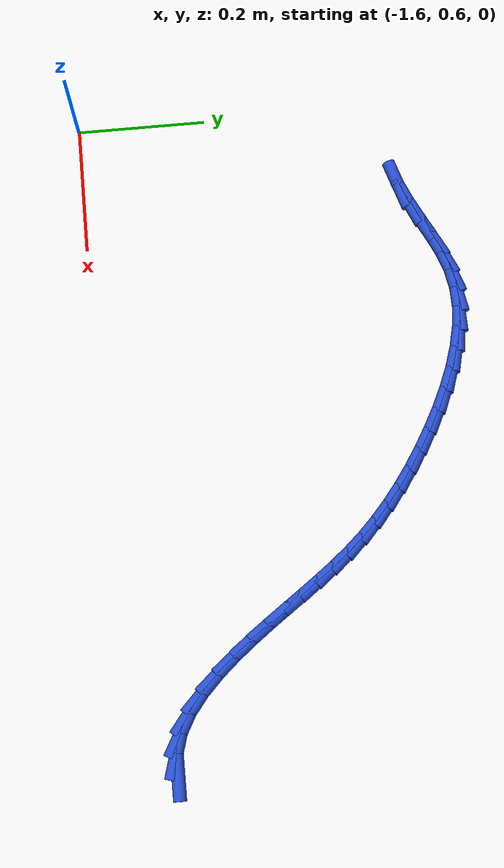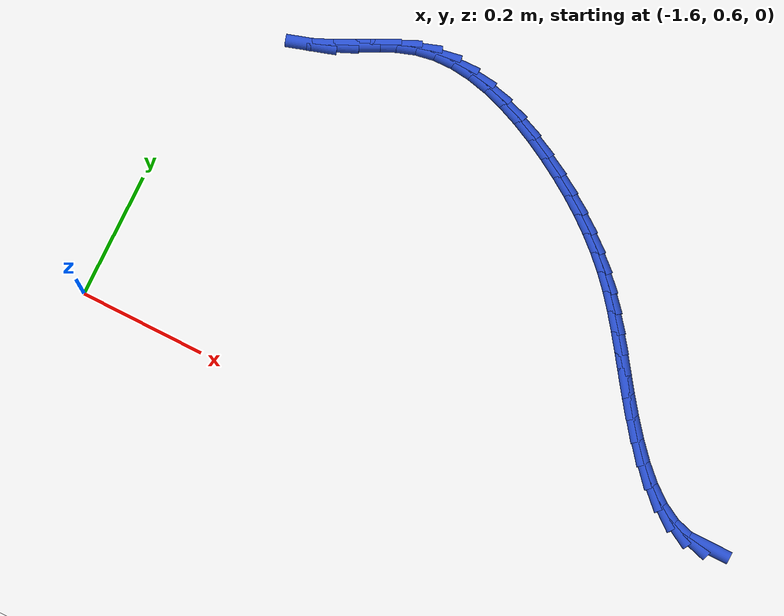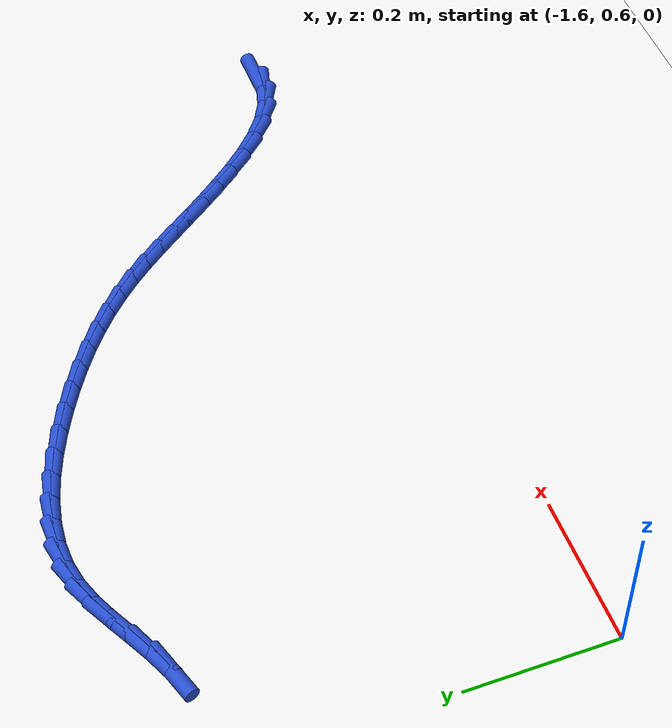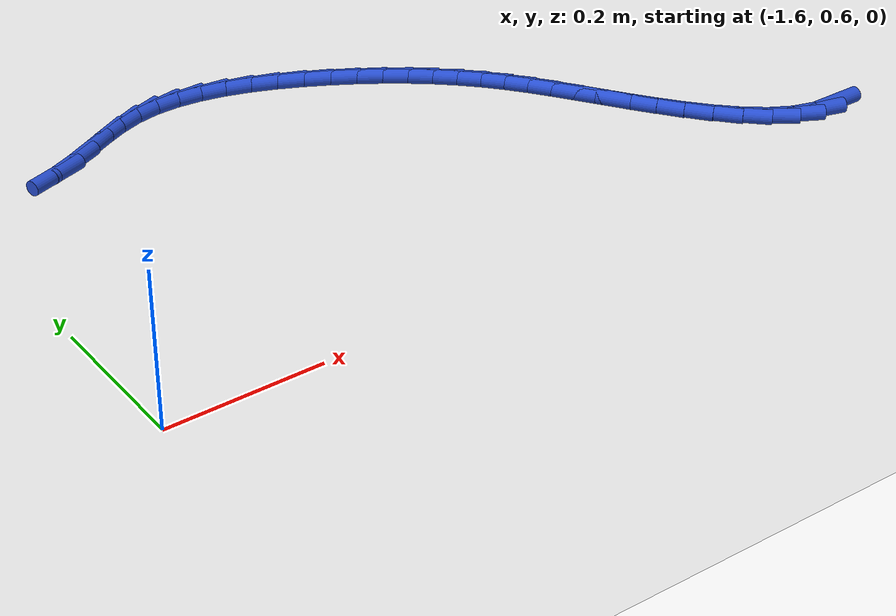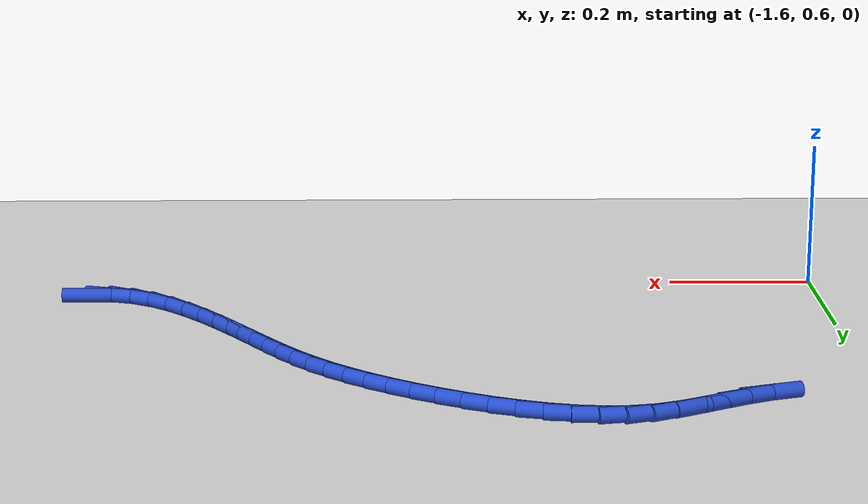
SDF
<sdf version="1.6">
 <world name="default">
  <model name="ground_plane">
   <static>1</static>
   <link name="link">
    <collision name="collision">
     <geometry><plane><normal>0 0 1</normal><size>100 100</size></plane></geometry>
     <surface><friction><ode><mu>100</mu><mu2>50</mu2></ode></friction></surface>
    </collision>
    <visual name="visual">
     <cast_shadows>0</cast_shadows>
     <geometry><plane><normal>0 0 1</normal><size>100 100</size></plane></geometry>
     <material>
      <script><uri>file://media/materials/scripts/gazebo.material</uri><name>Gazebo/WhiteGlow</name></script>
     </material>
    </visual>
   </link>
  </model>
  <model name="line">
   <link name="link_31">
    <pose>-0.5807907295750022 0.6813469273677638 0.01 0 1.57 -0.0019705620650321077</pose>
    <collision name="collision">
     <geometry><cylinder><radius>0.01</radius><length>0.08</length></cylinder></geometry>
    </collision>
    <visual name="visual">
     <material>
      <script><name>Gazebo/Blue</name><uri>file://media/materials/scripts/gazebo.material</uri></script>
     </material>
     <geometry><cylinder><radius>0.01</radius><length>0.08</length></cylinder></geometry>
    </visual>
   </link>
   <link name="link_32">
    <pose>-0.6106427766690227 0.6814057527554728 0.01 0 1.57 -0.2867981203086742</pose>
    <collision name="collision">
     <geometry><cylinder><radius>0.01</radius><length>0.08</length></cylinder></geometry>
    </collision>
    <visual name="visual">
     <material>
      <script><name>Gazebo/Blue</name><uri>file://media/materials/scripts/gazebo.material</uri></script>
     </material>
     <geometry><cylinder><radius>0.01</radius><length>0.08</length></cylinder></geometry>
    </visual>
   </link>
   <link name="link_33">
    <pose>-0.6397890279914353 0.6900018302974791 0.01 0 1.57 -0.5047179763512967</pose>
    <collision name="collision">
     <geometry><cylinder><radius>0.01</radius><length>0.08</length></cylinder></geometry>
    </collision>
    <visual name="visual">
     <material>
      <script><name>Gazebo/Blue</name><uri>file://media/materials/scripts/gazebo.material</uri></script>
     </material>
     <geometry><cylinder><radius>0.01</radius><length>0.08</length></cylinder></geometry>
    </visual>
   </link>
   <link name="link_34">
    <pose>-0.6680489531455344 0.7056138678432118 0.01 0 1.57 -0.6599458796858335</pose>
    <collision name="collision">
     <geometry><cylinder><radius>0.01</radius><length>0.08</length></cylinder></geometry>
    </collision>
    <visual name="visual">
     <material>
      <script><name>Gazebo/Blue</name><uri>file://media/materials/scripts/gazebo.material</uri></script>
     </material>
     <geometry><cylinder><radius>0.01</radius><length>0.08</length></cylinder></geometry>
    </visual>
   </link>
   <link name="link_35">
    <pose>-0.6952420819657715 0.726716230652086 0.01 0 1.57 -0.7681726812389821</pose>
    <collision name="collision">
     <geometry><cylinder><radius>0.01</radius><length>0.08</length></cylinder></geometry>
    </collision>
    <visual name="visual">
     <material>
      <script><name>Gazebo/Blue</name><uri>file://media/materials/scripts/gazebo.material</uri></script>
     </material>
     <geometry><cylinder><radius>0.01</radius><length>0.08</length></cylinder></geometry>
    </visual>
   </link>
   <link name="link_36">
    <pose>-0.7211879442865998 0.7517832839835176 0.01 0 1.57 -0.8427695875988271</pose>
    <collision name="collision">
     <geometry><cylinder><radius>0.01</radius><length>0.08</length></cylinder></geometry>
    </collision>
    <visual name="visual">
     <material>
      <script><name>Gazebo/Blue</name><uri>file://media/materials/scripts/gazebo.material</uri></script>
     </material>
     <geometry><cylinder><radius>0.01</radius><length>0.08</length></cylinder></geometry>
    </visual>
   </link>
   <link name="link_37">
    <pose>-0.7457060699424707 0.7792893930969212 0.01 0 1.57 -0.8923269711345042</pose>
    <collision name="collision">
     <geometry><cylinder><radius>0.01</radius><length>0.08</length></cylinder></geometry>
    </collision>
    <visual name="visual">
     <material>
      <script><name>Gazebo/Blue</name><uri>file://media/materials/scripts/gazebo.material</uri></script>
     </material>
     <geometry><cylinder><radius>0.01</radius><length>0.08</length></cylinder></geometry>
    </visual>
   </link>
   <link name="link_38">
    <pose>-0.7686159887903784 0.8077089233001533 0.01 0 1.57 -0.9228568453196128</pose>
    <collision name="collision">
     <geometry><cylinder><radius>0.01</radius><length>0.08</length></cylinder></geometry>
    </collision>
    <visual name="visual">
     <material>
      <script><name>Gazebo/Blue</name><uri>file://media/materials/scripts/gazebo.material</uri></script>
     </material>
     <geometry><cylinder><radius>0.01</radius><length>0.08</length></cylinder></geometry>
    </visual>
   </link>
   <link name="link_39">
    <pose>-0.7898525569310719 0.8357640644121936 0.01 0 1.57 -0.9411997638317315</pose>
    <collision name="collision">
     <geometry><cylinder><radius>0.01</radius><length>0.08</length></cylinder></geometry>
    </collision>
    <visual name="visual">
     <material>
      <script><name>Gazebo/Blue</name><uri>file://media/materials/scripts/gazebo.material</uri></script>
     </material>
     <geometry><cylinder><radius>0.01</radius><length>0.08</length></cylinder></geometry>
    </visual>
   </link>
   <link name="link_40">
    <pose>-0.8098039276731521 0.8631510964094102 0.01 0 1.57 -0.9474049773456503</pose>
    <collision name="collision">
     <geometry><cylinder><radius>0.01</radius><length>0.08</length></cylinder></geometry>
    </collision>
    <visual name="visual">
     <material>
      <script><name>Gazebo/Blue</name><uri>file://media/materials/scripts/gazebo.material</uri></script>
     </material>
     <geometry><cylinder><radius>0.01</radius><length>0.08</length></cylinder></geometry>
    </visual>
   </link>
   <link name="link_41">
    <pose>-0.8289696113167944 0.8898055942551454 0.01 0 1.57 -0.9401301825323694</pose>
    <collision name="collision">
     <geometry><cylinder><radius>0.01</radius><length>0.08</length></cylinder></geometry>
    </collision>
    <visual name="visual">
     <material>
      <script><name>Gazebo/Blue</name><uri>file://media/materials/scripts/gazebo.material</uri></script>
     </material>
     <geometry><cylinder><radius>0.01</radius><length>0.08</length></cylinder></geometry>
    </visual>
   </link>
   <link name="link_42">
    <pose>-0.8478491181621721 0.9156631329127393 0.01 0 1.57 -0.9185019148888919</pose>
    <collision name="collision">
     <geometry><cylinder><radius>0.01</radius><length>0.08</length></cylinder></geometry>
    </collision>
    <visual name="visual">
     <material>
      <script><name>Gazebo/Blue</name><uri>file://media/materials/scripts/gazebo.material</uri></script>
     </material>
     <geometry><cylinder><radius>0.01</radius><length>0.08</length></cylinder></geometry>
    </visual>
   </link>
   <link name="link_43">
    <pose>-0.8669419585094603 0.9406592873455332 0.01 0 1.57 -0.8822917669134398</pose>
    <collision name="collision">
     <geometry><cylinder><radius>0.01</radius><length>0.08</length></cylinder></geometry>
    </collision>
    <visual name="visual">
     <material>
      <script><name>Gazebo/Blue</name><uri>file://media/materials/scripts/gazebo.material</uri></script>
     </material>
     <geometry><cylinder><radius>0.01</radius><length>0.08</length></cylinder></geometry>
    </visual>
   </link>
   <link name="link_44">
    <pose>-0.886747642658833 0.9647296325168679 0.01 0 1.57 -0.8321746514424951</pose>
    <collision name="collision">
     <geometry><cylinder><radius>0.01</radius><length>0.08</length></cylinder></geometry>
    </collision>
    <visual name="visual">
     <material>
      <script><name>Gazebo/Blue</name><uri>file://media/materials/scripts/gazebo.material</uri></script>
     </material>
     <geometry><cylinder><radius>0.01</radius><length>0.08</length></cylinder></geometry>
    </visual>
   </link>
   <link name="link_45">
    <pose>-0.9077638565992792 0.9878100371384392 0.01 0 1.57 -0.7745334515542378</pose>
    <collision name="collision">
     <geometry><cylinder><radius>0.01</radius><length>0.08</length></cylinder></geometry>
    </collision>
    <visual name="visual">
     <material>
      <script><name>Gazebo/Blue</name><uri>file://media/materials/scripts/gazebo.material</uri></script>
     </material>
     <geometry><cylinder><radius>0.01</radius><length>0.08</length></cylinder></geometry>
    </visual>
   </link>
   <link name="link_46">
    <pose>-0.9303043527400612 1.0098659866818702 0.01 0 1.57 -0.7192289510089606</pose>
    <collision name="collision">
     <geometry><cylinder><radius>0.01</radius><length>0.08</length></cylinder></geometry>
    </collision>
    <visual name="visual">
     <material>
      <script><name>Gazebo/Blue</name><uri>file://media/materials/scripts/gazebo.material</uri></script>
     </material>
     <geometry><cylinder><radius>0.01</radius><length>0.08</length></cylinder></geometry>
    </visual>
   </link>
   <link name="link_47">
    <pose>-0.9543439187659414 1.0309175463039333 0.01 0 1.57 -0.6673157131287292</pose>
    <collision name="collision">
     <geometry><cylinder><radius>0.01</radius><length>0.08</length></cylinder></geometry>
    </collision>
    <visual name="visual">
     <material>
      <script><name>Gazebo/Blue</name><uri>file://media/materials/scripts/gazebo.material</uri></script>
     </material>
     <geometry><cylinder><radius>0.01</radius><length>0.08</length></cylinder></geometry>
    </visual>
   </link>
   <link name="link_48">
    <pose>-0.9798208306211499 1.0509906602371812 0.01 0 1.57 -0.6187740854668721</pose>
    <collision name="collision">
     <geometry><cylinder><radius>0.01</radius><length>0.08</length></cylinder></geometry>
    </collision>
    <visual name="visual">
     <material>
      <script><name>Gazebo/Blue</name><uri>file://media/materials/scripts/gazebo.material</uri></script>
     </material>
     <geometry><cylinder><radius>0.01</radius><length>0.08</length></cylinder></geometry>
    </visual>
   </link>
   <link name="link_49">
    <pose>-1.0066733642499168 1.0701112727141662 0.01 0 1.57 -0.5735215700252003</pose>
    <collision name="collision">
     <geometry><cylinder><radius>0.01</radius><length>0.08</length></cylinder></geometry>
    </collision>
    <visual name="visual">
     <material>
      <script><name>Gazebo/Blue</name><uri>file://media/materials/scripts/gazebo.material</uri></script>
     </material>
     <geometry><cylinder><radius>0.01</radius><length>0.08</length></cylinder></geometry>
    </visual>
   </link>
   <link name="link_50">
    <pose>-1.0348397955964728 1.0883053279674415 0.01 0 1.57 -0.5314305802721714</pose>
    <collision name="collision">
     <geometry><cylinder><radius>0.01</radius><length>0.08</length></cylinder></geometry>
    </collision>
    <visual name="visual">
     <material>
      <script><name>Gazebo/Blue</name><uri>file://media/materials/scripts/gazebo.material</uri></script>
     </material>
     <geometry><cylinder><radius>0.01</radius><length>0.08</length></cylinder></geometry>
    </visual>
   </link>
   <link name="link_51">
    <pose>-1.0642584006050473 1.105598770229559 0.01 0 1.57 -0.4904294313540992</pose>
    <collision name="collision">
     <geometry><cylinder><radius>0.01</radius><length>0.08</length></cylinder></geometry>
    </collision>
    <visual name="visual">
     <material>
      <script><name>Gazebo/Blue</name><uri>file://media/materials/scripts/gazebo.material</uri></script>
     </material>
     <geometry><cylinder><radius>0.01</radius><length>0.08</length></cylinder></geometry>
    </visual>
   </link>
   <link name="link_52">
    <pose>-1.0948277662881647 1.1219209736396423 0.01 0 1.57 -0.44204986152496695</pose>
    <collision name="collision">
     <geometry><cylinder><radius>0.01</radius><length>0.08</length></cylinder></geometry>
    </collision>
    <visual name="visual">
     <material>
      <script><name>Gazebo/Blue</name><uri>file://media/materials/scripts/gazebo.material</uri></script>
     </material>
     <geometry><cylinder><radius>0.01</radius><length>0.08</length></cylinder></geometry>
    </visual>
   </link>
   <link name="link_53">
    <pose>-1.1262854456209372 1.1368094884360602 0.01 0 1.57 -0.3825475306583266</pose>
    <collision name="collision">
     <geometry><cylinder><radius>0.01</radius><length>0.08</length></cylinder></geometry>
    </collision>
    <visual name="visual">
     <material>
      <script><name>Gazebo/Blue</name><uri>file://media/materials/scripts/gazebo.material</uri></script>
     </material>
     <geometry><cylinder><radius>0.01</radius><length>0.08</length></cylinder></geometry>
    </visual>
   </link>
   <link name="link_54">
    <pose>-1.1583281553412457 1.1497025031692982 0.01 0 1.57 -0.3094749751331333</pose>
    <collision name="collision">
     <geometry><cylinder><radius>0.01</radius><length>0.08</length></cylinder></geometry>
    </collision>
    <visual name="visual">
     <material>
      <script><name>Gazebo/Blue</name><uri>file://media/materials/scripts/gazebo.material</uri></script>
     </material>
     <geometry><cylinder><radius>0.01</radius><length>0.08</length></cylinder></geometry>
    </visual>
   </link>
   <link name="link_55">
    <pose>-1.1906526121826588 1.160038206379347 0.01 0 1.57 -0.21979419534022454</pose>
    <collision name="collision">
     <geometry><cylinder><radius>0.01</radius><length>0.08</length></cylinder></geometry>
    </collision>
    <visual name="visual">
     <material>
      <script><name>Gazebo/Blue</name><uri>file://media/materials/scripts/gazebo.material</uri></script>
     </material>
     <geometry><cylinder><radius>0.01</radius><length>0.08</length></cylinder></geometry>
    </visual>
   </link>
   <link name="link_56">
    <pose>-1.2229555328787454 1.1672547866061973 0.01 0 1.57 -0.1101173365197323</pose>
    <collision name="collision">
     <geometry><cylinder><radius>0.01</radius><length>0.08</length></cylinder></geometry>
    </collision>
    <visual name="visual">
     <material>
      <script><name>Gazebo/Blue</name><uri>file://media/materials/scripts/gazebo.material</uri></script>
     </material>
     <geometry><cylinder><radius>0.01</radius><length>0.08</length></cylinder></geometry>
    </visual>
   </link>
   <link name="link_57">
    <pose>-1.2549336341630724 1.1707904323898384 0.01 0 1.57 0.02255120510608637</pose>
    <collision name="collision">
     <geometry><cylinder><radius>0.01</radius><length>0.08</length></cylinder></geometry>
    </collision>
    <visual name="visual">
     <material>
      <script><name>Gazebo/Blue</name><uri>file://media/materials/scripts/gazebo.material</uri></script>
     </material>
     <geometry><cylinder><radius>0.01</radius><length>0.08</length></cylinder></geometry>
    </visual>
   </link>
   <link name="link_58">
    <pose>-1.2862836327692087 1.1700833322702615 0.01 0 1.57 0.17903485937706692</pose>
    <collision name="collision">
     <geometry><cylinder><radius>0.01</radius><length>0.08</length></cylinder></geometry>
    </collision>
    <visual name="visual">
     <material>
      <script><name>Gazebo/Blue</name><uri>file://media/materials/scripts/gazebo.material</uri></script>
     </material>
     <geometry><cylinder><radius>0.01</radius><length>0.08</length></cylinder></geometry>
    </visual>
   </link>
   <link name="link_59">
    <pose>-1.3167045520017633 1.1645779792830386 0.01 0 1.57 0.3322416490544961</pose>
    <collision name="collision">
     <geometry><cylinder><radius>0.01</radius><length>0.08</length></cylinder></geometry>
    </collision>
    <visual name="visual">
     <material>
      <script><name>Gazebo/Blue</name><uri>file://media/materials/scripts/gazebo.material</uri></script>
     </material>
     <geometry><cylinder><radius>0.01</radius><length>0.08</length></cylinder></geometry>
    </visual>
   </link>
   <link name="link_60">
    <pose>-1.3461511879102448 1.154417964003633 0.01 0 1.57 0.43247679287994784</pose>
    <collision name="collision">
     <geometry><cylinder><radius>0.01</radius><length>0.08</length></cylinder></geometry>
    </collision>
    <visual name="visual">
     <material>
      <script><name>Gazebo/Blue</name><uri>file://media/materials/scripts/gazebo.material</uri></script>
     </material>
     <geometry><cylinder><radius>0.01</radius><length>0.08</length></cylinder></geometry>
    </visual>
   </link>
   <link name="link_61">
    <pose>-1.3750630106778203 1.1410716252508115 0.01 0 1.57 0.47689710724915846</pose>
    <collision name="collision">
     <geometry><cylinder><radius>0.01</radius><length>0.08</length></cylinder></geometry>
    </collision>
    <visual name="visual">
     <material>
      <script><name>Gazebo/Blue</name><uri>file://media/materials/scripts/gazebo.material</uri></script>
     </material>
     <geometry><cylinder><radius>0.01</radius><length>0.08</length></cylinder></geometry>
    </visual>
   </link>
   <link name="link_62">
    <pose>-1.4039335274966636 1.1261549999105207 0.01 0 1.57 0.46934739829801453</pose>
    <collision name="collision">
     <geometry><cylinder><radius>0.01</radius><length>0.08</length></cylinder></geometry>
    </collision>
    <visual name="visual">
     <material>
      <script><name>Gazebo/Blue</name><uri>file://media/materials/scripts/gazebo.material</uri></script>
     </material>
     <geometry><cylinder><radius>0.01</radius><length>0.08</length></cylinder></geometry>
    </visual>
   </link>
   <link name="link_63">
    <pose>-1.4332562455589477 1.1112841248687049 0.01 0 1.57 0.41148530625701557</pose>
    <collision name="collision">
     <geometry><cylinder><radius>0.01</radius><length>0.08</length></cylinder></geometry>
    </collision>
    <visual name="visual">
     <material>
      <script><name>Gazebo/Blue</name><uri>file://media/materials/scripts/gazebo.material</uri></script>
     </material>
     <geometry><cylinder><radius>0.01</radius><length>0.08</length></cylinder></geometry>
    </visual>
   </link>
   <link name="link_64">
    <pose>-1.4635246720568456 1.0980750370113104 0.01 0 1.57 0.30353482138505744</pose>
    <collision name="collision">
     <geometry><cylinder><radius>0.01</radius><length>0.08</length></cylinder></geometry>
    </collision>
    <visual name="visual">
     <material>
      <script><name>Gazebo/Blue</name><uri>file://media/materials/scripts/gazebo.material</uri></script>
     </material>
     <geometry><cylinder><radius>0.01</radius><length>0.08</length></cylinder></geometry>
    </visual>
   </link>
  </model>
 </world>
</sdf>
